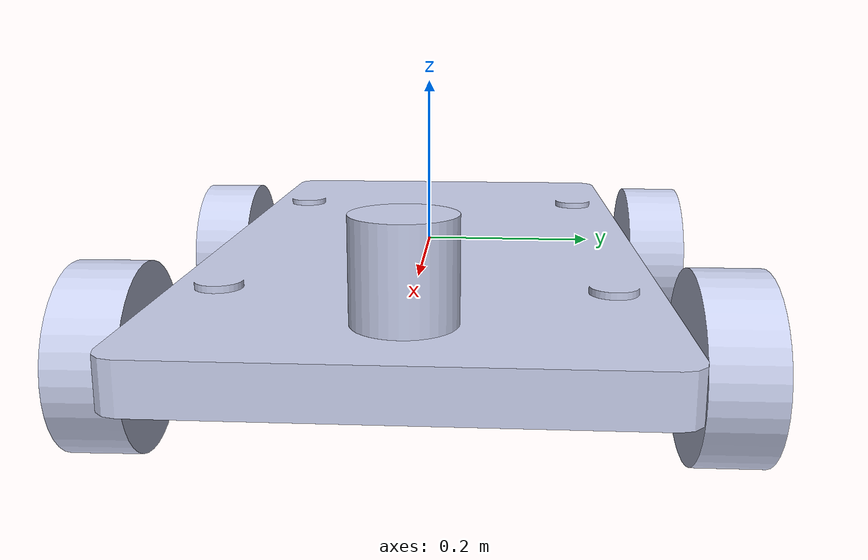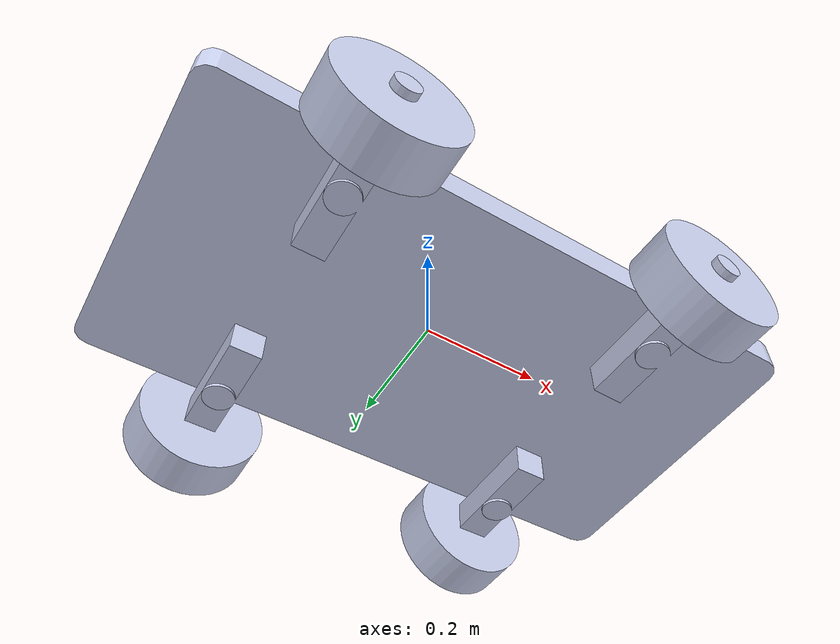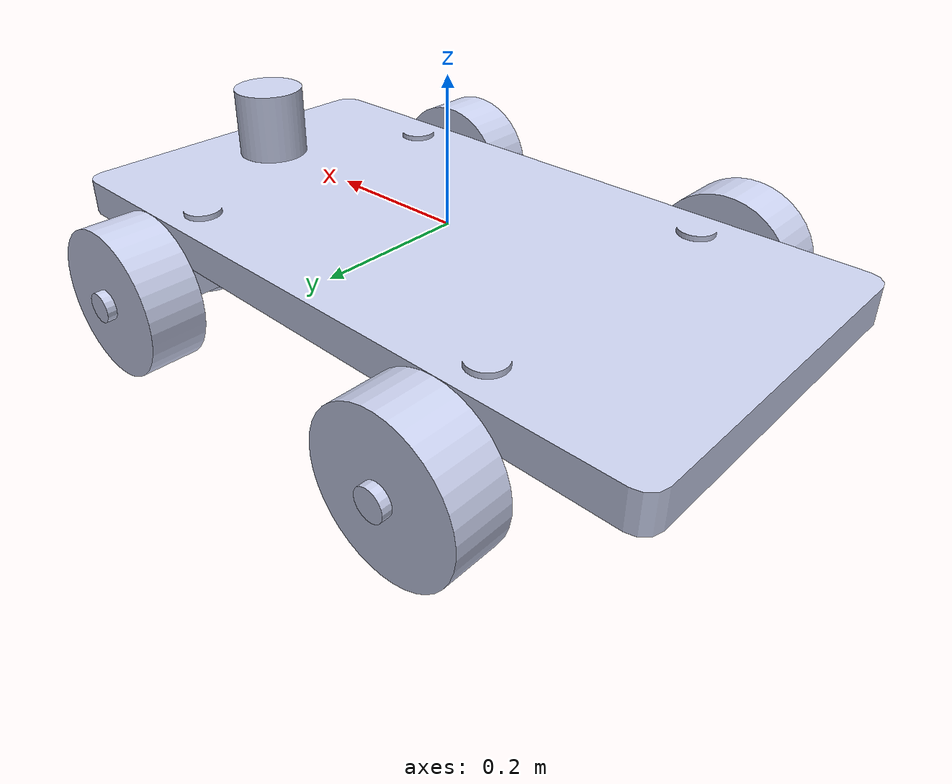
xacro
<?xml version="1.0" ?>
<robot
  name="car" xmlns:xacro="http://ros.org/wiki/xacro">
  <link name="dummy_link"></link>
  <link
    name="base_link">
    <inertial>
      <origin
        xyz="0.00470755801791906 1.11022302462516E-16 -0.0257454468120238"
        rpy="0 0 0" />
      <mass
        value="24.9831666875052" />
      <inertia
        ixx="0.535393521016459"
        ixy="3.47487696280531E-16"
        ixz="0.000725414459402336"
        iyy="1.91239117817699"
        iyz="-6.00231416576723E-19"
        izz="2.43625673542382" />
    </inertial>
    <visual>
      <origin
        xyz="0 0 0"
        rpy="0 0 0" />
      <geometry>
        <mesh
          filename="package://car/meshes/base_link.STL" />
      </geometry>
      <material
        name="">
        <color
          rgba="0.792156862745098 0.819607843137255 0.933333333333333 1" />
      </material>
    </visual>
    <collision>
      <origin
        xyz="0 0 0"
        rpy="0 0 0" />
      <geometry>
        <mesh
          filename="package://car/meshes/base_link.STL" />
      </geometry>
    </collision>
  </link>

  <joint name="dummy_joint" type="fixed">
    <origin rpy="0 0 0" xyz="0 0 0" />
    <parent link="dummy_link"/>
    <child link="base_link"/>
  </joint>

  <link
    name="left_hinge_front">
    <inertial>
      <origin
        xyz="-0.000120277605189206 -0.00350022524290428 0.0254000000000001"
        rpy="0 0 0" />
      <mass
        value="0.463471125188868" />
      <inertia
        ixx="0.00197270455567893"
        ixy="-6.11013623244948E-05"
        ixz="2.92397637481678E-20"
        iyy="0.000196679885199945"
        iyz="2.64224916325876E-19"
        izz="0.00197930187165054" />
    </inertial>
    <visual>
      <origin
        xyz="0 0 0"
        rpy="0 0 0" />
      <geometry>
        <mesh
          filename="package://car/meshes/left_hinge_front.STL" />
      </geometry>
      <material
        name="">
        <color
          rgba="0.792156862745098 0.819607843137255 0.933333333333333 1" />
      </material>
    </visual>
    <collision>
      <origin
        xyz="0 0 0"
        rpy="0 0 0" />
      <geometry>
        <mesh
          filename="package://car/meshes/left_hinge_front.STL" />
      </geometry>
    </collision>
  </link>
  <joint
    name="lefthingefront"
    type="revolute">
    <origin
      xyz="0.26023 0.2032 -0.1016"
      rpy="0 0 0.038642" />
    <parent
      link="base_link" />
    <child
      link="left_hinge_front" />
    <axis
      xyz="0 0 -1" />
    <limit
      lower="-3.14"
      upper="3.14"
      effort="0"
      velocity="0" />
  </joint>
  <link
    name="Left_wheel_front">
    <inertial>
      <origin
        xyz="-0.00306681650698584 -2.22044604925031E-16 0.0476632992826546"
        rpy="0 0 0" />
      <mass
        value="2.45721103449607" />
      <inertia
        ixx="0.00756591249272881"
        ixy="1.0283575538749E-18"
        ixz="-2.22681465401599E-05"
        iyy="0.00756581690842141"
        iyz="-1.88457462443331E-19"
        izz="0.0127535968260122" />
    </inertial>
    <visual>
      <origin
        xyz="0 0 0"
        rpy="0 0 0" />
      <geometry>
        <mesh
          filename="package://car/meshes/Left_wheel_front.STL" />
      </geometry>
      <material
        name="">
        <color
          rgba="0.792156862745098 0.819607843137255 0.933333333333333 1" />
      </material>
    </visual>
    <collision>
      <origin
        xyz="0 0 0"
        rpy="0 0 0" />
      <geometry>
        <mesh
          filename="package://car/meshes/Left_wheel_front.STL" />
      </geometry>
    </collision>
  </link>
  <joint
    name="leftwheelfront"
    type="continuous">
    <origin
      xyz="0.0051485 0.066486 0.0254"
      rpy="-1.5708 0 -0.038642" />
    <parent
      link="left_hinge_front" />
    <child
      link="Left_wheel_front" />
    <axis
      xyz="-0.0042924 0 0.99999" />
  </joint>
  <link
    name="right_hinge_front">
    <inertial>
      <origin
        xyz="-7.59833866305626E-05 0.00350146683239372 0.0254"
        rpy="0 0 0" />
      <mass
        value="0.463471125188869" />
      <inertia
        ixx="0.00197396624132431"
        ixy="3.86134664937877E-05"
        ixz="-1.49124554135027E-20"
        iyy="0.00019541819955457"
        iyz="-2.49142633738966E-19"
        izz="0.00197930187165054" />
    </inertial>
    <visual>
      <origin
        xyz="0 0 0"
        rpy="0 0 0" />
      <geometry>
        <mesh
          filename="package://car/meshes/right_hinge_front.STL" />
      </geometry>
      <material
        name="">
        <color
          rgba="0.792156862745098 0.819607843137255 0.933333333333333 1" />
      </material>
    </visual>
    <collision>
      <origin
        xyz="0 0 0"
        rpy="0 0 0" />
      <geometry>
        <mesh
          filename="package://car/meshes/right_hinge_front.STL" />
      </geometry>
    </collision>
  </link>
  <joint
    name="righthingefront"
    type="revolute">
    <origin
      xyz="0.26023 -0.2032 -0.1016"
      rpy="0 0 0" />
    <parent
      link="base_link" />
    <child
      link="right_hinge_front" />
    <axis
      xyz="0 0 -1" />
    <limit
      lower="-3.14"
      upper="3.14"
      effort="0"
      velocity="0" />
  </joint>
  <link
    name="right_wheel_front">
    <inertial>
      <origin
        xyz="-0.00055358895971408 0 -0.0380130301891577"
        rpy="0 0 0" />
      <mass
        value="2.45721103449608" />
      <inertia
        ixx="0.00756825877729745"
        ixy="6.67749374612028E-19"
        ixz="-0.000112526214711238"
        iyy="0.00756581690842142"
        iyz="1.564637453037E-18"
        izz="0.0127512505414436" />
    </inertial>
    <visual>
      <origin
        xyz="0 0 0"
        rpy="0 0 0" />
      <geometry>
        <mesh
          filename="package://car/meshes/right_wheel_front.STL" />
      </geometry>
      <material
        name="">
        <color
          rgba="0.792156862745098 0.819607843137255 0.933333333333333 1" />
      </material>
    </visual>
    <collision>
      <origin
        xyz="0 0 0"
        rpy="0 0 0" />
      <geometry>
        <mesh
          filename="package://car/meshes/right_wheel_front.STL" />
      </geometry>
    </collision>
  </link>
  <joint
    name="rightwheelfront"
    type="continuous">
    <origin
      xyz="0.0030334 -0.07626 0.0254"
      rpy="-1.5708 0 0" />
    <parent
      link="right_hinge_front" />
    <child
      link="right_wheel_front" />
    <axis
      xyz="0.021695 0 -0.99976" />
  </joint>
  <link
    name="left_hinge_back">
    <inertial>
      <origin
        xyz="-0.00608319327731166 0.0980977088280104 0.0132336134453781"
        rpy="0 0 0" />
      <mass
        value="0.463471125188868" />
      <inertia
        ixx="0.00197480417071053"
        ixy="1.17512027222171E-17"
        ixz="1.73229024851307E-22"
        iyy="0.000194580270168345"
        iyz="2.14137992207302E-19"
        izz="0.00197930187165054" />
    </inertial>
    <visual>
      <origin
        xyz="0 0 0"
        rpy="0 0 0" />
      <geometry>
        <mesh
          filename="package://car/meshes/left_hinge_back.STL" />
      </geometry>
      <material
        name="">
        <color
          rgba="0.792156862745098 0.819607843137255 0.933333333333333 1" />
      </material>
    </visual>
    <collision>
      <origin
        xyz="0 0 0"
        rpy="0 0 0" />
      <geometry>
        <mesh
          filename="package://car/meshes/left_hinge_back.STL" />
      </geometry>
    </collision>
  </link>
  <joint
    name="lefthingeback"
    type="fixed">
    <origin
      xyz="-0.24169 0.1016 -0.089434"
      rpy="0 0 0" />
    <parent
      link="base_link" />
    <child
      link="left_hinge_back" />
    <axis
      xyz="0 0 0" />
  </joint>
  <link
    name="left_wheel_back">
    <inertial>
      <origin
        xyz="5.55111512312578E-16 -2.22044604925031E-16 0.0381"
        rpy="0 0 0" />
      <mass
        value="2.45721103449607" />
      <inertia
        ixx="0.00756581690842141"
        ixy="-4.26086374897843E-19"
        ixz="-3.48296029793558E-17"
        iyy="0.00756581690842142"
        iyz="-2.88541231556167E-20"
        izz="0.0127536924103196" />
    </inertial>
    <visual>
      <origin
        xyz="0 0 0"
        rpy="0 0 0" />
      <geometry>
        <mesh
          filename="package://car/meshes/left_wheel_back.STL" />
      </geometry>
      <material
        name="">
        <color
          rgba="0.792156862745098 0.819607843137255 0.933333333333333 1" />
      </material>
    </visual>
    <collision>
      <origin
        xyz="0 0 0"
        rpy="0 0 0" />
      <geometry>
        <mesh
          filename="package://car/meshes/left_wheel_back.STL" />
      </geometry>
    </collision>
  </link>
  <joint
    name="leftwheelback"
    type="continuous">
    <origin
      xyz="-0.0060832 0.1778 0.013234"
      rpy="-1.5708 0 0" />
    <parent
      link="left_hinge_back" />
    <child
      link="left_wheel_back" />
    <axis
      xyz="0 0 1" />
  </joint>
  <link
    name="right_hinge_back">
    <inertial>
      <origin
        xyz="0.00608319327731088 -0.0980977088280104 0.0132336134453781"
        rpy="0 0 0" />
      <mass
        value="0.463471125188868" />
      <inertia
        ixx="0.00197480417071053"
        ixy="-1.92674564203676E-19"
        ixz="-2.63421034547483E-22"
        iyy="0.000194580270168346"
        iyz="-2.72975061386773E-19"
        izz="0.00197930187165054" />
    </inertial>
    <visual>
      <origin
        xyz="0 0 0"
        rpy="0 0 0" />
      <geometry>
        <mesh
          filename="package://car/meshes/right_hinge_back.STL" />
      </geometry>
      <material
        name="">
        <color
          rgba="0.792156862745098 0.819607843137255 0.933333333333333 1" />
      </material>
    </visual>
    <collision>
      <origin
        xyz="0 0 0"
        rpy="0 0 0" />
      <geometry>
        <mesh
          filename="package://car/meshes/right_hinge_back.STL" />
      </geometry>
    </collision>
  </link>
  <joint
    name="righthingeback"
    type="fixed">
    <origin
      xyz="-0.25386 -0.1016 -0.089434"
      rpy="0 0 0" />
    <parent
      link="base_link" />
    <child
      link="right_hinge_back" />
    <axis
      xyz="0 0 0" />
  </joint>
  <link
    name="right_wheel_back">
    <inertial>
      <origin
        xyz="0 0 -0.0381"
        rpy="0 0 0" />
      <mass
        value="2.45721103449608" />
      <inertia
        ixx="0.00756581690842141"
        ixy="3.07243844122817E-34"
        ixz="9.93953842907557E-19"
        iyy="0.00756581690842141"
        iyz="-1.71100024437671E-35"
        izz="0.0127536924103196" />
    </inertial>
    <visual>
      <origin
        xyz="0 0 0"
        rpy="0 0 0" />
      <geometry>
        <mesh
          filename="package://car/meshes/right_wheel_back.STL" />
      </geometry>
      <material
        name="">
        <color
          rgba="0.792156862745098 0.819607843137255 0.933333333333333 1" />
      </material>
    </visual>
    <collision>
      <origin
        xyz="0 0 0"
        rpy="0 0 0" />
      <geometry>
        <mesh
          filename="package://car/meshes/right_wheel_back.STL" />
      </geometry>
    </collision>
  </link>
  <joint
    name="rightwheelback"
    type="continuous">
    <origin
      xyz="0.0060832 -0.1778 0.013234"
      rpy="-1.5708 0 0" />
    <parent
      link="right_hinge_back" />
    <child
      link="right_wheel_back" />
    <axis
      xyz="0 0 -1" />
  </joint>
  <link
    name="lidar_link">
    <inertial>
      <origin
        xyz="0 -0.01 0.0508"
        rpy="0 0 0" />
      <mass
        value="0.823703678020892" />
      <inertia
        ixx="0.00123998155146124"
        ixy="2.12072395209952E-51"
        ixz="6.93649765430231E-35"
        iyy="0.00123998155146124"
        iyz="-4.10781393993733E-36"
        izz="0.00106284132982392" />
    </inertial>
    <visual>
      <origin
        xyz="0 0 0"
        rpy="0 0 0" />
      <geometry>
        <mesh
          filename="package://car/meshes/lidar_link.STL" />
      </geometry>
      <material
        name="">
        <color
          rgba="0.792156862745098 0.819607843137255 0.933333333333333 1" />
      </material>
    </visual>
    <collision>
      <origin
        xyz="0 0 0"
        rpy="0 0 0" />
      <geometry>
        <mesh
          filename="package://car/meshes/lidar_link.STL" />
      </geometry>
    </collision>
  </link>
  <joint
    name="lidar_joint"
    type="fixed">
    <origin
      xyz="0.37453 -0.01 0"
      rpy="0 0 3.1416" />
    <parent
      link="base_link" />
    <child
      link="lidar_link" />
    <axis
      xyz="0 0 1" />
  </joint>

      <ros2_control name="GazeboSystem" type="system">
 <hardware>
     <plugin>gazebo_ros2_control/GazeboSystem</plugin>
 </hardware>
 <!-- # Velocity Controllers -->

 <joint name="leftwheelfront">
     <command_interface name="velocity">
         <param name="min">-1000.0</param>
         <param name="max">1000.0</param>
     </command_interface>
     <state_interface name="position"/>
     <state_interface name="velocity"/>
 </joint>

  <joint name="rightwheelfront">
     <command_interface name="velocity">
         <param name="min">-1000.0</param>
         <param name="max">1000.0</param>
     </command_interface>
     <state_interface name="position"/>
     <state_interface name="velocity"/>
 </joint>

  <joint name="leftwheelback">
     <command_interface name="velocity">
         <param name="min">-1000.0</param>
         <param name="max">1000.0</param>
     </command_interface>
     <state_interface name="position"/>
     <state_interface name="velocity"/>
 </joint>

  <joint name="rightwheelback">
     <command_interface name="velocity">
         <param name="min">-1000.0</param>
         <param name="max">1000.0</param>
     </command_interface>
     <state_interface name="position"/>
     <state_interface name="velocity"/>
 </joint>

<!-- # Position Controller -->
 <joint name="lefthingefront">
     <command_interface name="position">
         <param name="min">-3.14</param>
         <param name="max">3.14</param>
     </command_interface>
     <state_interface name="position"/>
     <state_interface name="velocity"/>
 </joint>

  <joint name="righthingefront">
     <command_interface name="position">
         <param name="min">-3.14</param>
         <param name="max">3.14</param>
     </command_interface>
     <state_interface name="position"/>
     <state_interface name="velocity"/>
 </joint>

 </ros2_control>

 <gazebo>
    <plugin filename="libgazebo_ros2_control.so" name="gazebo_ros2_control">
        <parameters>$(find car)/config/control.yaml</parameters>
    </plugin>
 </gazebo>

 <gazebo reference="lidar_link">
  <sensor name="lidar" type="ray">
    <pose>0.0 0.0 0.227 0 0 0</pose>
    <always_on>true</always_on>
    <visualize>true</visualize>
    <update_rate>5</update_rate>
    <ray>
      <scan>
        <horizontal>
          <samples>360</samples>
          <resolution>1.00000</resolution>
          <min_angle>0.000000</min_angle>
          <max_angle>6.280000</max_angle>
        </horizontal>
      </scan>
      <range>
        <min>0.120000</min>
        <max>3.5</max>
        <resolution>0.015000</resolution>
      </range>
      <noise>
        <type>gaussian</type>
        <mean>0.0</mean>
        <stddev>0.01</stddev>
      </noise>
    </ray>
    <plugin name="scan" filename="libgazebo_ros_ray_sensor.so">
      <ros>
        <remapping>~/out:=scan</remapping>
      </ros>
      <output_type>sensor_msgs/LaserScan</output_type>
      <frame_name>lidar_link</frame_name>
    </plugin>
  </sensor>
  </gazebo>

  <gazebo reference="base_link">
  <gravity>true</gravity>
  <sensor name="imu_sensor" type="imu">
    <always_on>true</always_on>
    <update_rate>100</update_rate>
    <visualize>true</visualize>
    <topic>__default_topic__</topic>
    <plugin filename="libgazebo_ros_imu_sensor.so" name="imu_plugin">
      <topicName>imu</topicName>
      <bodyName>base_link</bodyName>
      <updateRateHZ>10.0</updateRateHZ>
      <gaussianNoise>0.0</gaussianNoise>
      <xyzOffset>0 0 0</xyzOffset>
      <rpyOffset>0 0 0</rpyOffset>
      <frameName>base_link</frameName>
      <initialOrientationAsReference>false</initialOrientationAsReference>
    </plugin>
    <pose>0 0 0 0 0 0</pose>
  </sensor>
</gazebo>

</robot>
